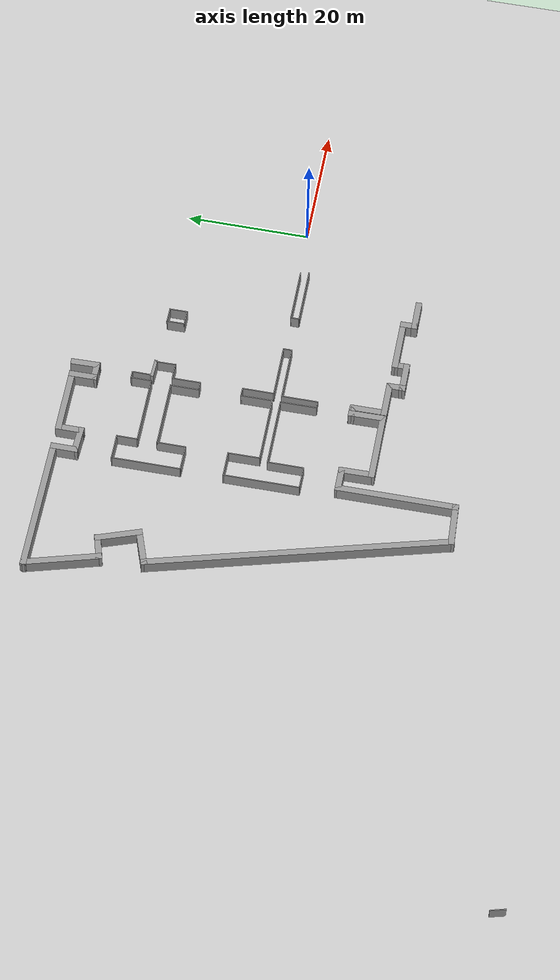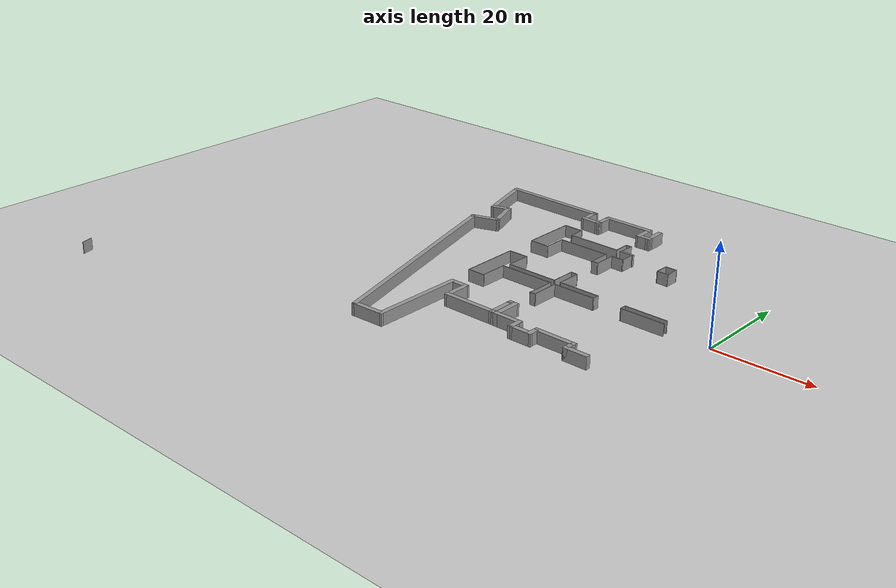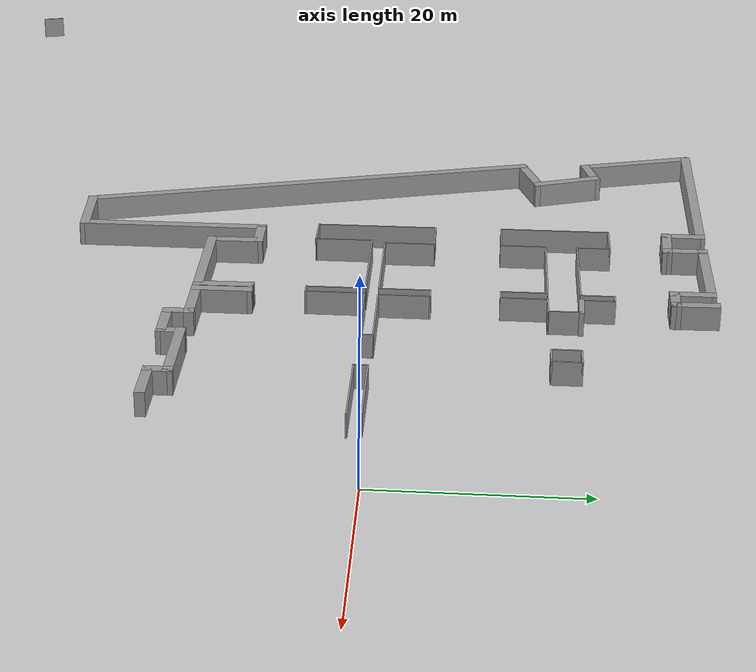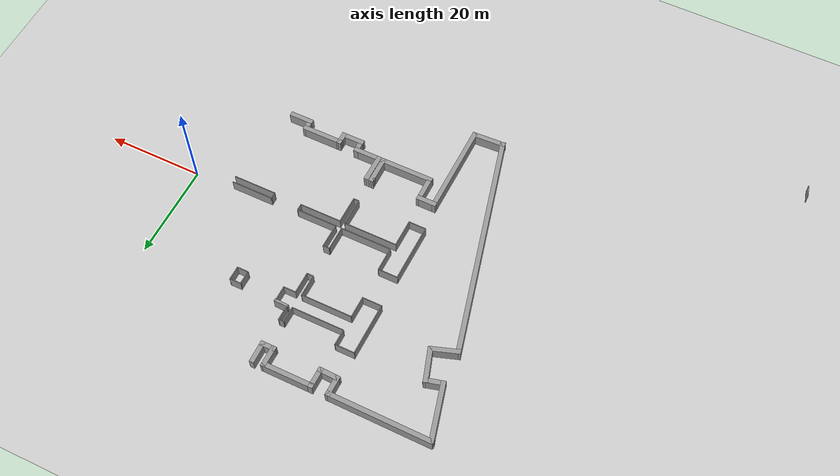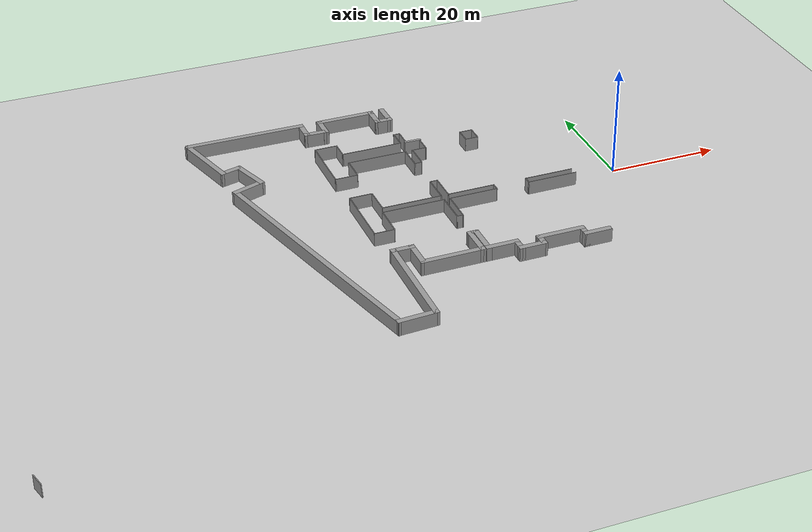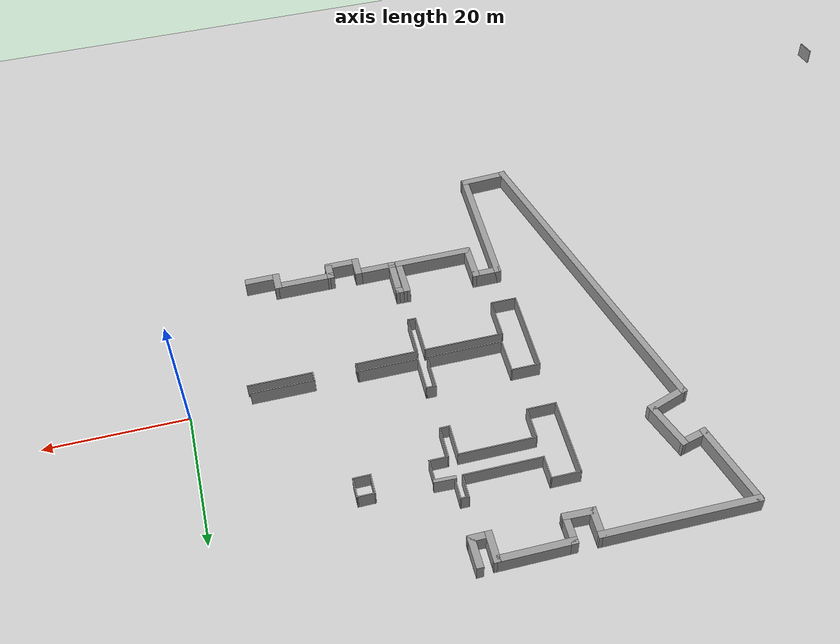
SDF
<sdf version="1.7">
 <world name="default">
  <model name="ground_plane">
   <static>1</static>
   <link name="link">
    <collision name="collision">
     <geometry><plane><normal>0 0 1</normal><size>100 100</size></plane></geometry>
     <surface><friction><ode><mu>100</mu><mu2>50</mu2></ode></friction></surface>
    </collision>
    <visual name="visual">
     <cast_shadows>0</cast_shadows>
     <geometry><plane><normal>0 0 1</normal><size>100 100</size></plane></geometry>
     <material>
      <script><uri>file://media/materials/scripts/gazebo.material</uri><name>Gazebo/Grey</name></script>
     </material>
    </visual>
   </link>
  </model>
  <model name="map7">
   <pose>-22.5342 -8.78038 0 0 -0 0</pose>
   <link name="Wall_0">
    <collision name="Wall_0_Collision">
     <geometry><box><size>22.3381 1 2.5</size></box></geometry>
     <pose>0 0 1.25 0 -0 0</pose>
    </collision>
    <visual name="Wall_0_Visual">
     <pose>0 0 1.25 0 -0 0</pose>
     <geometry><box><size>22.3381 1 2.5</size></box></geometry>
     <material>
      <script><uri>file://media/materials/scripts/gazebo.material</uri><name>Gazebo/Grey</name></script>
      <ambient>1 1 1 1</ambient>
     </material>
     <meta><layer>0</layer></meta>
    </visual>
    <pose>-36.4768 41.2489 0 0 -0 -0.006983</pose>
   </link>
   <link name="Wall_1">
    <collision name="Wall_1_Collision">
     <geometry><box><size>4.5 1 2.5</size></box></geometry>
     <pose>0 0 1.25 0 -0 0</pose>
    </collision>
    <visual name="Wall_1_Visual">
     <pose>0 0 1.25 0 -0 0</pose>
     <geometry><box><size>4.5 1 2.5</size></box></geometry>
     <material>
      <script><uri>file://media/materials/scripts/gazebo.material</uri><name>Gazebo/Grey</name></script>
      <ambient>1 1 1 1</ambient>
     </material>
     <meta><layer>0</layer></meta>
    </visual>
    <pose>-25.8078 39.4244 0 0 -0 -1.5708</pose>
   </link>
   <link name="Wall_101">
    <collision name="Wall_101_Collision">
     <geometry><box><size>12.25 0.15 2.5</size></box></geometry>
     <pose>0 0 1.25 0 -0 0</pose>
    </collision>
    <visual name="Wall_101_Visual">
     <pose>0 0 1.25 0 -0 0</pose>
     <geometry><box><size>12.25 0.15 2.5</size></box></geometry>
     <material>
      <script><uri>file://media/materials/scripts/gazebo.material</uri><name>Gazebo/Grey</name></script>
      <ambient>1 1 1 1</ambient>
     </material>
     <meta><layer>0</layer></meta>
    </visual>
    <pose>-26.0311 7.38819 0 0 -0 -1.5708</pose>
   </link>
   <link name="Wall_102">
    <collision name="Wall_102_Collision">
     <geometry><box><size>3.77517 0.15 2.5</size></box></geometry>
     <pose>0 0 1.25 0 -0 0</pose>
    </collision>
    <visual name="Wall_102_Visual">
     <pose>0 0 1.25 0 -0 0</pose>
     <geometry><box><size>3.77517 0.15 2.5</size></box></geometry>
     <material>
      <script><uri>file://media/materials/scripts/gazebo.material</uri><name>Gazebo/Grey</name></script>
      <ambient>1 1 1 1</ambient>
     </material>
     <meta><layer>0</layer></meta>
    </visual>
    <pose>-24.2186 1.29268 0 0 -0 -0.005925</pose>
   </link>
   <link name="Wall_103">
    <collision name="Wall_103_Collision">
     <geometry><box><size>6 0.15 2.5</size></box></geometry>
     <pose>0 0 1.25 0 -0 0</pose>
    </collision>
    <visual name="Wall_103_Visual">
     <pose>0 0 1.25 0 -0 0</pose>
     <geometry><box><size>6 0.15 2.5</size></box></geometry>
     <material>
      <script><uri>file://media/materials/scripts/gazebo.material</uri><name>Gazebo/Grey</name></script>
      <ambient>1 1 1 1</ambient>
     </material>
     <meta><layer>0</layer></meta>
    </visual>
    <pose>-22.406 4.20694 0 0 -0 1.5708</pose>
   </link>
   <link name="Wall_104">
    <collision name="Wall_104_Collision">
     <geometry><box><size>11.5 0.15 2.5</size></box></geometry>
     <pose>0 0 1.25 0 -0 0</pose>
    </collision>
    <visual name="Wall_104_Visual">
     <pose>0 0 1.25 0 -0 0</pose>
     <geometry><box><size>11.5 0.15 2.5</size></box></geometry>
     <material>
      <script><uri>file://media/materials/scripts/gazebo.material</uri><name>Gazebo/Grey</name></script>
      <ambient>1 1 1 1</ambient>
     </material>
     <meta><layer>0</layer></meta>
    </visual>
    <pose>-16.731 7.13194 0 0 -0 0</pose>
   </link>
   <link name="Wall_105">
    <collision name="Wall_105_Collision">
     <geometry><box><size>6 0.15 2.5</size></box></geometry>
     <pose>0 0 1.25 0 -0 0</pose>
    </collision>
    <visual name="Wall_105_Visual">
     <pose>0 0 1.25 0 -0 0</pose>
     <geometry><box><size>6 0.15 2.5</size></box></geometry>
     <material>
      <script><uri>file://media/materials/scripts/gazebo.material</uri><name>Gazebo/Grey</name></script>
      <ambient>1 1 1 1</ambient>
     </material>
     <meta><layer>0</layer></meta>
    </visual>
    <pose>-11.056 4.20694 0 0 -0 -1.5708</pose>
   </link>
   <link name="Wall_106">
    <collision name="Wall_106_Collision">
     <geometry><box><size>1.25 0.15 2.5</size></box></geometry>
     <pose>0 0 1.25 0 -0 0</pose>
    </collision>
    <visual name="Wall_106_Visual">
     <pose>0 0 1.25 0 -0 0</pose>
     <geometry><box><size>1.25 0.15 2.5</size></box></geometry>
     <material>
      <script><uri>file://media/materials/scripts/gazebo.material</uri><name>Gazebo/Grey</name></script>
      <ambient>1 1 1 1</ambient>
     </material>
     <meta><layer>0</layer></meta>
    </visual>
    <pose>-10.506 1.28194 0 0 -0 0</pose>
   </link>
   <link name="Wall_107">
    <collision name="Wall_107_Collision">
     <geometry><box><size>6 0.15 2.5</size></box></geometry>
     <pose>0 0 1.25 0 -0 0</pose>
    </collision>
    <visual name="Wall_107_Visual">
     <pose>0 0 1.25 0 -0 0</pose>
     <geometry><box><size>6 0.15 2.5</size></box></geometry>
     <material>
      <script><uri>file://media/materials/scripts/gazebo.material</uri><name>Gazebo/Grey</name></script>
      <ambient>1 1 1 1</ambient>
     </material>
     <meta><layer>0</layer></meta>
    </visual>
    <pose>-9.95603 4.20694 0 0 -0 1.5708</pose>
   </link>
   <link name="Wall_108">
    <collision name="Wall_108_Collision">
     <geometry><box><size>9 0.15 2.5</size></box></geometry>
     <pose>0 0 1.25 0 -0 0</pose>
    </collision>
    <visual name="Wall_108_Visual">
     <pose>0 0 1.25 0 -0 0</pose>
     <geometry><box><size>9 0.15 2.5</size></box></geometry>
     <material>
      <script><uri>file://media/materials/scripts/gazebo.material</uri><name>Gazebo/Grey</name></script>
      <ambient>1 1 1 1</ambient>
     </material>
     <meta><layer>0</layer></meta>
    </visual>
    <pose>-5.53103 7.13194 0 0 -0 0</pose>
   </link>
   <link name="Wall_109">
    <collision name="Wall_109_Collision">
     <geometry><box><size>1.5 0.15 2.5</size></box></geometry>
     <pose>0 0 1.25 0 -0 0</pose>
    </collision>
    <visual name="Wall_109_Visual">
     <pose>0 0 1.25 0 -0 0</pose>
     <geometry><box><size>1.5 0.15 2.5</size></box></geometry>
     <material>
      <script><uri>file://media/materials/scripts/gazebo.material</uri><name>Gazebo/Grey</name></script>
      <ambient>1 1 1 1</ambient>
     </material>
     <meta><layer>0</layer></meta>
    </visual>
    <pose>-1.10603 7.80694 0 0 -0 1.5708</pose>
   </link>
   <link name="Wall_110">
    <collision name="Wall_110_Collision">
     <geometry><box><size>8.75 0.15 2.5</size></box></geometry>
     <pose>0 0 1.25 0 -0 0</pose>
    </collision>
    <visual name="Wall_110_Visual">
     <pose>0 0 1.25 0 -0 0</pose>
     <geometry><box><size>8.75 0.15 2.5</size></box></geometry>
     <material>
      <script><uri>file://media/materials/scripts/gazebo.material</uri><name>Gazebo/Grey</name></script>
      <ambient>1 1 1 1</ambient>
     </material>
     <meta><layer>0</layer></meta>
    </visual>
    <pose>-5.40603 8.48194 0 0 -0 3.14159</pose>
   </link>
   <link name="Wall_111">
    <collision name="Wall_111_Collision">
     <geometry><box><size>5.25 0.15 2.5</size></box></geometry>
     <pose>0 0 1.25 0 -0 0</pose>
    </collision>
    <visual name="Wall_111_Visual">
     <pose>0 0 1.25 0 -0 0</pose>
     <geometry><box><size>5.25 0.15 2.5</size></box></geometry>
     <material>
      <script><uri>file://media/materials/scripts/gazebo.material</uri><name>Gazebo/Grey</name></script>
      <ambient>1 1 1 1</ambient>
     </material>
     <meta><layer>0</layer></meta>
    </visual>
    <pose>-9.70603 11.0319 0 0 -0 1.5708</pose>
   </link>
   <link name="Wall_112">
    <collision name="Wall_112_Collision">
     <geometry><box><size>1.5 0.15 2.5</size></box></geometry>
     <pose>0 0 1.25 0 -0 0</pose>
    </collision>
    <visual name="Wall_112_Visual">
     <pose>0 0 1.25 0 -0 0</pose>
     <geometry><box><size>1.5 0.15 2.5</size></box></geometry>
     <material>
      <script><uri>file://media/materials/scripts/gazebo.material</uri><name>Gazebo/Grey</name></script>
      <ambient>1 1 1 1</ambient>
     </material>
     <meta><layer>0</layer></meta>
    </visual>
    <pose>-10.381 13.5819 0 0 -0 3.14159</pose>
   </link>
   <link name="Wall_113">
    <collision name="Wall_113_Collision">
     <geometry><box><size>5.25 0.15 2.5</size></box></geometry>
     <pose>0 0 1.25 0 -0 0</pose>
    </collision>
    <visual name="Wall_113_Visual">
     <pose>0 0 1.25 0 -0 0</pose>
     <geometry><box><size>5.25 0.15 2.5</size></box></geometry>
     <material>
      <script><uri>file://media/materials/scripts/gazebo.material</uri><name>Gazebo/Grey</name></script>
      <ambient>1 1 1 1</ambient>
     </material>
     <meta><layer>0</layer></meta>
    </visual>
    <pose>-11.056 11.0319 0 0 -0 -1.5708</pose>
   </link>
   <link name="Wall_114">
    <collision name="Wall_114_Collision">
     <geometry><box><size>11 0.15 2.5</size></box></geometry>
     <pose>0 0 1.25 0 -0 0</pose>
    </collision>
    <visual name="Wall_114_Visual">
     <pose>0 0 1.25 0 -0 0</pose>
     <geometry><box><size>11 0.15 2.5</size></box></geometry>
     <material>
      <script><uri>file://media/materials/scripts/gazebo.material</uri><name>Gazebo/Grey</name></script>
      <ambient>1 1 1 1</ambient>
     </material>
     <meta><layer>0</layer></meta>
    </visual>
    <pose>-16.481 8.48194 0 0 -0 3.14159</pose>
   </link>
   <link name="Wall_115">
    <collision name="Wall_115_Collision">
     <geometry><box><size>5.26489 0.15 2.5</size></box></geometry>
     <pose>0 0 1.25 0 -0 0</pose>
    </collision>
    <visual name="Wall_115_Visual">
     <pose>0 0 1.25 0 -0 0</pose>
     <geometry><box><size>5.26489 0.15 2.5</size></box></geometry>
     <material>
      <script><uri>file://media/materials/scripts/gazebo.material</uri><name>Gazebo/Grey</name></script>
      <ambient>1 1 1 1</ambient>
     </material>
     <meta><layer>0</layer></meta>
    </visual>
    <pose>-21.9184 11.0394 0 0 -0 1.57563</pose>
   </link>
   <link name="Wall_116">
    <collision name="Wall_116_Collision">
     <geometry><box><size>4.25 0.15 2.5</size></box></geometry>
     <pose>0 0 1.25 0 -0 0</pose>
    </collision>
    <visual name="Wall_116_Visual">
     <pose>0 0 1.25 0 -0 0</pose>
     <geometry><box><size>4.25 0.15 2.5</size></box></geometry>
     <material>
      <script><uri>file://media/materials/scripts/gazebo.material</uri><name>Gazebo/Grey</name></script>
      <ambient>1 1 1 1</ambient>
     </material>
     <meta><layer>0</layer></meta>
    </visual>
    <pose>-23.9807 13.5918 0 0 -0 3.14159</pose>
   </link>
   <link name="Wall_118">
    <collision name="Wall_118_Collision">
     <geometry><box><size>9 0.15 2.5</size></box></geometry>
     <pose>0 0 1.25 0 -0 0</pose>
    </collision>
    <visual name="Wall_118_Visual">
     <pose>0 0 1.25 0 -0 0</pose>
     <geometry><box><size>9 0.15 2.5</size></box></geometry>
     <material>
      <script><uri>file://media/materials/scripts/gazebo.material</uri><name>Gazebo/Grey</name></script>
      <ambient>1 1 1 1</ambient>
     </material>
     <meta><layer>0</layer></meta>
    </visual>
    <pose>9.40506 8.40745 0 0 -0 0</pose>
   </link>
   <link name="Wall_128">
    <collision name="Wall_128_Collision">
     <geometry><box><size>9.25 0.15 2.5</size></box></geometry>
     <pose>0 0 1.25 0 -0 0</pose>
    </collision>
    <visual name="Wall_128_Visual">
     <pose>0 0 1.25 0 -0 0</pose>
     <geometry><box><size>9.25 0.15 2.5</size></box></geometry>
     <material>
      <script><uri>file://media/materials/scripts/gazebo.material</uri><name>Gazebo/Grey</name></script>
      <ambient>1 1 1 1</ambient>
     </material>
     <meta><layer>0</layer></meta>
    </visual>
    <pose>9.53006 7.05745 0 0 -0 3.14159</pose>
   </link>
   <link name="Wall_129">
    <collision name="Wall_129_Collision">
     <geometry><box><size>1.5 0.15 2.5</size></box></geometry>
     <pose>0 0 1.25 0 -0 0</pose>
    </collision>
    <visual name="Wall_129_Visual">
     <pose>0 0 1.25 0 -0 0</pose>
     <geometry><box><size>1.5 0.15 2.5</size></box></geometry>
     <material>
      <script><uri>file://media/materials/scripts/gazebo.material</uri><name>Gazebo/Grey</name></script>
      <ambient>1 1 1 1</ambient>
     </material>
     <meta><layer>0</layer></meta>
    </visual>
    <pose>4.98006 7.73245 0 0 -0 1.5708</pose>
   </link>
   <link name="Wall_140">
    <collision name="Wall_140_Collision">
     <geometry><box><size>3 0.15 2.5</size></box></geometry>
     <pose>0 0 1.25 0 -0 0</pose>
    </collision>
    <visual name="Wall_140_Visual">
     <pose>0 0 1.25 0 -0 0</pose>
     <geometry><box><size>3 0.15 2.5</size></box></geometry>
     <material>
      <script><uri>file://media/materials/scripts/gazebo.material</uri><name>Gazebo/Grey</name></script>
      <ambient>1 1 1 1</ambient>
     </material>
     <meta><layer>0</layer></meta>
    </visual>
    <pose>0.597433 26.6458 0 0 -0 -1.5708</pose>
   </link>
   <link name="Wall_141">
    <collision name="Wall_141_Collision">
     <geometry><box><size>2.5 0.15 2.5</size></box></geometry>
     <pose>0 0 1.25 0 -0 0</pose>
    </collision>
    <visual name="Wall_141_Visual">
     <pose>0 0 1.25 0 -0 0</pose>
     <geometry><box><size>2.5 0.15 2.5</size></box></geometry>
     <material>
      <script><uri>file://media/materials/scripts/gazebo.material</uri><name>Gazebo/Grey</name></script>
      <ambient>1 1 1 1</ambient>
     </material>
     <meta><layer>0</layer></meta>
    </visual>
    <pose>1.77243 25.2208 0 0 -0 0</pose>
   </link>
   <link name="Wall_142">
    <collision name="Wall_142_Collision">
     <geometry><box><size>3 0.15 2.5</size></box></geometry>
     <pose>0 0 1.25 0 -0 0</pose>
    </collision>
    <visual name="Wall_142_Visual">
     <pose>0 0 1.25 0 -0 0</pose>
     <geometry><box><size>3 0.15 2.5</size></box></geometry>
     <material>
      <script><uri>file://media/materials/scripts/gazebo.material</uri><name>Gazebo/Grey</name></script>
      <ambient>1 1 1 1</ambient>
     </material>
     <meta><layer>0</layer></meta>
    </visual>
    <pose>2.94743 26.6458 0 0 -0 1.5708</pose>
   </link>
   <link name="Wall_143">
    <collision name="Wall_143_Collision">
     <geometry><box><size>2.5 0.15 2.5</size></box></geometry>
     <pose>0 0 1.25 0 -0 0</pose>
    </collision>
    <visual name="Wall_143_Visual">
     <pose>0 0 1.25 0 -0 0</pose>
     <geometry><box><size>2.5 0.15 2.5</size></box></geometry>
     <material>
      <script><uri>file://media/materials/scripts/gazebo.material</uri><name>Gazebo/Grey</name></script>
      <ambient>1 1 1 1</ambient>
     </material>
     <meta><layer>0</layer></meta>
    </visual>
    <pose>1.77243 28.0708 0 0 -0 3.14159</pose>
   </link>
   <link name="Wall_2">
    <collision name="Wall_2_Collision">
     <geometry><box><size>4.64058 1 2.5</size></box></geometry>
     <pose>0 0 1.25 0 -0 0</pose>
    </collision>
    <visual name="Wall_2_Visual">
     <pose>0 0 1.25 0 -0 0</pose>
     <geometry><box><size>4.64058 1 2.5</size></box></geometry>
     <material>
      <script><uri>file://media/materials/scripts/gazebo.material</uri><name>Gazebo/Grey</name></script>
      <ambient>1 1 1 1</ambient>
     </material>
     <meta><layer>0</layer></meta>
    </visual>
    <pose>-23.9888 37.6049 0 0 -0 -0.038189</pose>
   </link>
   <link name="Wall_3">
    <collision name="Wall_3_Collision">
     <geometry><box><size>4.60041 1 2.5</size></box></geometry>
     <pose>0 0 1.25 0 -0 0</pose>
    </collision>
    <visual name="Wall_3_Visual">
     <pose>0 0 1.25 0 -0 0</pose>
     <geometry><box><size>4.60041 1 2.5</size></box></geometry>
     <material>
      <script><uri>file://media/materials/scripts/gazebo.material</uri><name>Gazebo/Grey</name></script>
      <ambient>1 1 1 1</ambient>
     </material>
     <meta><layer>0</layer></meta>
    </visual>
    <pose>-22.1698 39.3354 0 0 -0 1.5708</pose>
   </link>
   <link name="Wall_4">
    <collision name="Wall_4_Collision">
     <geometry><box><size>11.0999 1 2.5</size></box></geometry>
     <pose>0 0 1.25 0 -0 0</pose>
    </collision>
    <visual name="Wall_4_Visual">
     <pose>0 0 1.25 0 -0 0</pose>
     <geometry><box><size>11.0999 1 2.5</size></box></geometry>
     <material>
      <script><uri>file://media/materials/scripts/gazebo.material</uri><name>Gazebo/Grey</name></script>
      <ambient>1 1 1 1</ambient>
     </material>
     <meta><layer>0</layer></meta>
    </visual>
    <pose>-17.1198 41.1354 0 0 -0 0</pose>
   </link>
   <link name="Wall_5">
    <collision name="Wall_5_Collision">
     <geometry><box><size>4.59959 1 2.5</size></box></geometry>
     <pose>0 0 1.25 0 -0 0</pose>
    </collision>
    <visual name="Wall_5_Visual">
     <pose>0 0 1.25 0 -0 0</pose>
     <geometry><box><size>4.59959 1 2.5</size></box></geometry>
     <material>
      <script><uri>file://media/materials/scripts/gazebo.material</uri><name>Gazebo/Grey</name></script>
      <ambient>1 1 1 1</ambient>
     </material>
     <meta><layer>0</layer></meta>
    </visual>
    <pose>-12.0633 39.3354 0 0 -0 -1.56719</pose>
   </link>
   <link name="Wall_52">
    <collision name="Wall_52_Collision">
     <geometry><box><size>5.1 1 2.5</size></box></geometry>
     <pose>0 0 1.25 0 -0 0</pose>
    </collision>
    <visual name="Wall_52_Visual">
     <pose>0 0 1.25 0 -0 0</pose>
     <geometry><box><size>5.1 1 2.5</size></box></geometry>
     <material>
      <script><uri>file://media/materials/scripts/gazebo.material</uri><name>Gazebo/Grey</name></script>
      <ambient>1 1 1 1</ambient>
     </material>
     <meta><layer>0</layer></meta>
    </visual>
    <pose>9.15918 -11.6646 0 0 -0 3.14159</pose>
   </link>
   <link name="Wall_53">
    <collision name="Wall_53_Collision">
     <geometry><box><size>2.85 1 2.5</size></box></geometry>
     <pose>0 0 1.25 0 -0 0</pose>
    </collision>
    <visual name="Wall_53_Visual">
     <pose>0 0 1.25 0 -0 0</pose>
     <geometry><box><size>2.85 1 2.5</size></box></geometry>
     <material>
      <script><uri>file://media/materials/scripts/gazebo.material</uri><name>Gazebo/Grey</name></script>
      <ambient>1 1 1 1</ambient>
     </material>
     <meta><layer>0</layer></meta>
    </visual>
    <pose>7.10918 -10.7396 0 0 -0 1.5708</pose>
   </link>
   <link name="Wall_54">
    <collision name="Wall_54_Collision">
     <geometry><box><size>8.85001 1 2.5</size></box></geometry>
     <pose>0 0 1.25 0 -0 0</pose>
    </collision>
    <visual name="Wall_54_Visual">
     <pose>0 0 1.25 0 -0 0</pose>
     <geometry><box><size>8.85001 1 2.5</size></box></geometry>
     <material>
      <script><uri>file://media/materials/scripts/gazebo.material</uri><name>Gazebo/Grey</name></script>
      <ambient>1 1 1 1</ambient>
     </material>
     <meta><layer>0</layer></meta>
    </visual>
    <pose>3.18418 -9.80862 0 0 -0 3.14006</pose>
   </link>
   <link name="Wall_55">
    <collision name="Wall_55_Collision">
     <geometry><box><size>2.85063 1 2.5</size></box></geometry>
     <pose>0 0 1.25 0 -0 0</pose>
    </collision>
    <visual name="Wall_55_Visual">
     <pose>0 0 1.25 0 -0 0</pose>
     <geometry><box><size>2.85063 1 2.5</size></box></geometry>
     <material>
      <script><uri>file://media/materials/scripts/gazebo.material</uri><name>Gazebo/Grey</name></script>
      <ambient>1 1 1 1</ambient>
     </material>
     <meta><layer>0</layer></meta>
    </visual>
    <pose>-0.740824 -10.7281 0 0 -0 -1.5708</pose>
   </link>
   <link name="Wall_56">
    <collision name="Wall_56_Collision">
     <geometry><box><size>5.1 1 2.5</size></box></geometry>
     <pose>0 0 1.25 0 -0 0</pose>
    </collision>
    <visual name="Wall_56_Visual">
     <pose>0 0 1.25 0 -0 0</pose>
     <geometry><box><size>5.1 1 2.5</size></box></geometry>
     <material>
      <script><uri>file://media/materials/scripts/gazebo.material</uri><name>Gazebo/Grey</name></script>
      <ambient>1 1 1 1</ambient>
     </material>
     <meta><layer>0</layer></meta>
    </visual>
    <pose>-2.79082 -11.6591 0 0 -0 -3.13891</pose>
   </link>
   <link name="Wall_57">
    <collision name="Wall_57_Collision">
     <geometry><box><size>3.1 1 2.5</size></box></geometry>
     <pose>0 0 1.25 0 -0 0</pose>
    </collision>
    <visual name="Wall_57_Visual">
     <pose>0 0 1.25 0 -0 0</pose>
     <geometry><box><size>3.1 1 2.5</size></box></geometry>
     <material>
      <script><uri>file://media/materials/scripts/gazebo.material</uri><name>Gazebo/Grey</name></script>
      <ambient>1 1 1 1</ambient>
     </material>
     <meta><layer>0</layer></meta>
    </visual>
    <pose>-4.84082 -10.6146 0 0 -0 1.5708</pose>
   </link>
   <link name="Wall_58">
    <collision name="Wall_58_Collision">
     <geometry><box><size>6.1 1 2.5</size></box></geometry>
     <pose>0 0 1.25 0 -0 0</pose>
    </collision>
    <visual name="Wall_58_Visual">
     <pose>0 0 1.25 0 -0 0</pose>
     <geometry><box><size>6.1 1 2.5</size></box></geometry>
     <material>
      <script><uri>file://media/materials/scripts/gazebo.material</uri><name>Gazebo/Grey</name></script>
      <ambient>1 1 1 1</ambient>
     </material>
     <meta><layer>0</layer></meta>
    </visual>
    <pose>-7.39082 -9.56462 0 0 -0 3.14159</pose>
   </link>
   <link name="Wall_59">
    <collision name="Wall_59_Collision">
     <geometry><box><size>6.10043 1 2.5</size></box></geometry>
     <pose>0 0 1.25 0 -0 0</pose>
    </collision>
    <visual name="Wall_59_Visual">
     <pose>0 0 1.25 0 -0 0</pose>
     <geometry><box><size>6.10043 1 2.5</size></box></geometry>
     <material>
      <script><uri>file://media/materials/scripts/gazebo.material</uri><name>Gazebo/Grey</name></script>
      <ambient>1 1 1 1</ambient>
     </material>
     <meta><layer>0</layer></meta>
    </visual>
    <pose>-9.94082 -7.01462 0 0 -0 1.5708</pose>
   </link>
   <link name="Wall_6">
    <collision name="Wall_6_Collision">
     <geometry><box><size>3.34972 1 2.5</size></box></geometry>
     <pose>0 0 1.25 0 -0 0</pose>
    </collision>
    <visual name="Wall_6_Visual">
     <pose>0 0 1.25 0 -0 0</pose>
     <geometry><box><size>3.34972 1 2.5</size></box></geometry>
     <material>
      <script><uri>file://media/materials/scripts/gazebo.material</uri><name>Gazebo/Grey</name></script>
      <ambient>1 1 1 1</ambient>
     </material>
     <meta><layer>0</layer></meta>
    </visual>
    <pose>-10.8818 37.5354 0 0 -0 0</pose>
   </link>
   <link name="Wall_60">
    <collision name="Wall_60_Collision">
     <geometry><box><size>2.10024 1 2.5</size></box></geometry>
     <pose>0 0 1.25 0 -0 0</pose>
    </collision>
    <visual name="Wall_60_Visual">
     <pose>0 0 1.25 0 -0 0</pose>
     <geometry><box><size>2.10024 1 2.5</size></box></geometry>
     <material>
      <script><uri>file://media/materials/scripts/gazebo.material</uri><name>Gazebo/Grey</name></script>
      <ambient>1 1 1 1</ambient>
     </material>
     <meta><layer>0</layer></meta>
    </visual>
    <pose>-10.4908 -4.45312 0 0 -0 3.12069</pose>
   </link>
   <link name="Wall_61">
    <collision name="Wall_61_Collision">
     <geometry><box><size>6.10047 1 2.5</size></box></geometry>
     <pose>0 0 1.25 0 -0 0</pose>
    </collision>
    <visual name="Wall_61_Visual">
     <pose>0 0 1.25 0 -0 0</pose>
     <geometry><box><size>6.10047 1 2.5</size></box></geometry>
     <material>
      <script><uri>file://media/materials/scripts/gazebo.material</uri><name>Gazebo/Grey</name></script>
      <ambient>1 1 1 1</ambient>
     </material>
     <meta><layer>0</layer></meta>
    </visual>
    <pose>-11.0178 -6.99162 0 0 -0 -1.56178</pose>
   </link>
   <link name="Wall_62">
    <collision name="Wall_62_Collision">
     <geometry><box><size>11.6005 1 2.5</size></box></geometry>
     <pose>0 0 1.25 0 -0 0</pose>
    </collision>
    <visual name="Wall_62_Visual">
     <pose>0 0 1.25 0 -0 0</pose>
     <geometry><box><size>11.6005 1 2.5</size></box></geometry>
     <material>
      <script><uri>file://media/materials/scripts/gazebo.material</uri><name>Gazebo/Grey</name></script>
      <ambient>1 1 1 1</ambient>
     </material>
     <meta><layer>0</layer></meta>
    </visual>
    <pose>-16.2953 -9.55312 0 0 -0 -3.13942</pose>
   </link>
   <link name="Wall_63">
    <collision name="Wall_63_Collision">
     <geometry><box><size>5.85043 1 2.5</size></box></geometry>
     <pose>0 0 1.25 0 -0 0</pose>
    </collision>
    <visual name="Wall_63_Visual">
     <pose>0 0 1.25 0 -0 0</pose>
     <geometry><box><size>5.85043 1 2.5</size></box></geometry>
     <material>
      <script><uri>file://media/materials/scripts/gazebo.material</uri><name>Gazebo/Grey</name></script>
      <ambient>1 1 1 1</ambient>
     </material>
     <meta><layer>0</layer></meta>
    </visual>
    <pose>-21.6183 -7.13962 0 0 -0 1.58007</pose>
   </link>
   <link name="Wall_64">
    <collision name="Wall_64_Collision">
     <geometry><box><size>4.304 1 2.5</size></box></geometry>
     <pose>0 0 1.25 0 -0 0</pose>
    </collision>
    <visual name="Wall_64_Visual">
     <pose>0 0 1.25 0 -0 0</pose>
     <geometry><box><size>4.304 1 2.5</size></box></geometry>
     <material>
      <script><uri>file://media/materials/scripts/gazebo.material</uri><name>Gazebo/Grey</name></script>
      <ambient>1 1 1 1</ambient>
     </material>
     <meta><layer>0</layer></meta>
    </visual>
    <pose>-23.2928 -4.71462 0 0 -0 3.14159</pose>
   </link>
   <link name="Wall_65">
    <collision name="Wall_65_Collision">
     <geometry><box><size>19.85 1 2.5</size></box></geometry>
     <pose>0 0 1.25 0 -0 0</pose>
    </collision>
    <visual name="Wall_65_Visual">
     <pose>0 0 1.25 0 -0 0</pose>
     <geometry><box><size>19.85 1 2.5</size></box></geometry>
     <material>
      <script><uri>file://media/materials/scripts/gazebo.material</uri><name>Gazebo/Grey</name></script>
      <ambient>1 1 1 1</ambient>
     </material>
     <meta><layer>0</layer></meta>
    </visual>
    <pose>-24.9453 -14.1396 0 0 -0 -1.57085</pose>
   </link>
   <link name="Wall_7">
    <collision name="Wall_7_Collision">
     <geometry><box><size>4.77848 1 2.5</size></box></geometry>
     <pose>0 0 1.25 0 -0 0</pose>
    </collision>
    <visual name="Wall_7_Visual">
     <pose>0 0 1.25 0 -0 0</pose>
     <geometry><box><size>4.77848 1 2.5</size></box></geometry>
     <material>
      <script><uri>file://media/materials/scripts/gazebo.material</uri><name>Gazebo/Grey</name></script>
      <ambient>1 1 1 1</ambient>
     </material>
     <meta><layer>0</layer></meta>
    </visual>
    <pose>-9.73752 39.4244 0 0 -0 1.58704</pose>
   </link>
   <link name="Wall_72">
    <collision name="Wall_72_Collision">
     <geometry><box><size>2.5 0.15 2.5</size></box></geometry>
     <pose>0 0 1.25 0 -0 0</pose>
    </collision>
    <visual name="Wall_72_Visual">
     <pose>0 0 1.25 0 -0 0</pose>
     <geometry><box><size>2.5 0.15 2.5</size></box></geometry>
     <material>
      <script><uri>file://media/materials/scripts/gazebo.material</uri><name>Gazebo/Grey</name></script>
      <ambient>1 1 1 1</ambient>
     </material>
     <meta><layer>0</layer></meta>
    </visual>
    <pose>-91.3246 -40.6156 0 0 -0 1.8326</pose>
   </link>
   <link name="Wall_74">
    <collision name="Wall_74_Collision">
     <geometry><box><size>12.6312 1 2.5</size></box></geometry>
     <pose>0 0 1.25 0 -0 0</pose>
    </collision>
    <visual name="Wall_74_Visual">
     <pose>0 0 1.25 0 -0 0</pose>
     <geometry><box><size>12.6312 1 2.5</size></box></geometry>
     <material>
      <script><uri>file://media/materials/scripts/gazebo.material</uri><name>Gazebo/Grey</name></script>
      <ambient>1 1 1 1</ambient>
     </material>
     <meta><layer>0</layer></meta>
    </visual>
    <pose>-45.6046 35.5369 0 0 -0 -1.29927</pose>
   </link>
   <link name="Wall_75">
    <collision name="Wall_75_Collision">
     <geometry><box><size>4.35013 1 2.5</size></box></geometry>
     <pose>0 0 1.25 0 -0 0</pose>
    </collision>
    <visual name="Wall_75_Visual">
     <pose>0 0 1.25 0 -0 0</pose>
     <geometry><box><size>4.35013 1 2.5</size></box></geometry>
     <material>
      <script><uri>file://media/materials/scripts/gazebo.material</uri><name>Gazebo/Grey</name></script>
      <ambient>1 1 1 1</ambient>
     </material>
     <meta><layer>0</layer></meta>
    </visual>
    <pose>-42.4268 30.3679 0 0 -0 0.261775</pose>
   </link>
   <link name="Wall_76">
    <collision name="Wall_76_Collision">
     <geometry><box><size>7.60184 1 2.5</size></box></geometry>
     <pose>0 0 1.25 0 -0 0</pose>
    </collision>
    <visual name="Wall_76_Visual">
     <pose>0 0 1.25 0 -0 0</pose>
     <geometry><box><size>7.60184 1 2.5</size></box></geometry>
     <material>
      <script><uri>file://media/materials/scripts/gazebo.material</uri><name>Gazebo/Grey</name></script>
      <ambient>1 1 1 1</ambient>
     </material>
     <meta><layer>0</layer></meta>
    </visual>
    <pose>-39.7368 27.6794 0 0 -0 -1.24004</pose>
   </link>
   <link name="Wall_77">
    <collision name="Wall_77_Collision">
     <geometry><box><size>6.34717 1 2.5</size></box></geometry>
     <pose>0 0 1.25 0 -0 0</pose>
    </collision>
    <visual name="Wall_77_Visual">
     <pose>0 0 1.25 0 -0 0</pose>
     <geometry><box><size>6.34717 1 2.5</size></box></geometry>
     <material>
      <script><uri>file://media/materials/scripts/gazebo.material</uri><name>Gazebo/Grey</name></script>
      <ambient>1 1 1 1</ambient>
     </material>
     <meta><layer>0</layer></meta>
    </visual>
    <pose>-41.1928 23.6874 0 0 -0 -2.81014</pose>
   </link>
   <link name="Wall_78">
    <collision name="Wall_78_Collision">
     <geometry><box><size>49.3495 1 2.5</size></box></geometry>
     <pose>0 0 1.25 0 -0 0</pose>
    </collision>
    <visual name="Wall_78_Visual">
     <pose>0 0 1.25 0 -0 0</pose>
     <geometry><box><size>49.3495 1 2.5</size></box></geometry>
     <material>
      <script><uri>file://media/materials/scripts/gazebo.material</uri><name>Gazebo/Grey</name></script>
      <ambient>1 1 1 1</ambient>
     </material>
     <meta><layer>0</layer></meta>
    </visual>
    <pose>-37.464 -0.533381 0 0 -0 -1.309</pose>
   </link>
   <link name="Wall_81">
    <collision name="Wall_81_Collision">
     <geometry><box><size>7.26946 1 2.5</size></box></geometry>
     <pose>0 0 1.25 0 -0 0</pose>
    </collision>
    <visual name="Wall_81_Visual">
     <pose>0 0 1.25 0 -0 0</pose>
     <geometry><box><size>7.26946 1 2.5</size></box></geometry>
     <material>
      <script><uri>file://media/materials/scripts/gazebo.material</uri><name>Gazebo/Grey</name></script>
      <ambient>1 1 1 1</ambient>
     </material>
     <meta><layer>0</layer></meta>
    </visual>
    <pose>-28.0765 -23.7244 0 0 -0 0.050986</pose>
   </link>
   <link name="Wall_83">
    <collision name="Wall_83_Collision">
     <geometry><box><size>11.3232 0.15 2.5</size></box></geometry>
     <pose>0 0 1.25 0 -0 0</pose>
    </collision>
    <visual name="Wall_83_Visual">
     <pose>0 0 1.25 0 -0 0</pose>
     <geometry><box><size>11.3232 0.15 2.5</size></box></geometry>
     <material>
      <script><uri>file://media/materials/scripts/gazebo.material</uri><name>Gazebo/Grey</name></script>
      <ambient>1 1 1 1</ambient>
     </material>
     <meta><layer>0</layer></meta>
    </visual>
    <pose>-26.2083 26.082 0 0 -0 -1.57095</pose>
   </link>
   <link name="Wall_84">
    <collision name="Wall_84_Collision">
     <geometry><box><size>4.25 0.15 2.5</size></box></geometry>
     <pose>0 0 1.25 0 -0 0</pose>
    </collision>
    <visual name="Wall_84_Visual">
     <pose>0 0 1.25 0 -0 0</pose>
     <geometry><box><size>4.25 0.15 2.5</size></box></geometry>
     <material>
      <script><uri>file://media/materials/scripts/gazebo.material</uri><name>Gazebo/Grey</name></script>
      <ambient>1 1 1 1</ambient>
     </material>
     <meta><layer>0</layer></meta>
    </visual>
    <pose>-24.1592 20.4954 0 0 -0 0</pose>
   </link>
   <link name="Wall_85">
    <collision name="Wall_85_Collision">
     <geometry><box><size>4.75 0.15 2.5</size></box></geometry>
     <pose>0 0 1.25 0 -0 0</pose>
    </collision>
    <visual name="Wall_85_Visual">
     <pose>0 0 1.25 0 -0 0</pose>
     <geometry><box><size>4.75 0.15 2.5</size></box></geometry>
     <material>
      <script><uri>file://media/materials/scripts/gazebo.material</uri><name>Gazebo/Grey</name></script>
      <ambient>1 1 1 1</ambient>
     </material>
     <meta><layer>0</layer></meta>
    </visual>
    <pose>-22.1092 22.7954 0 0 -0 1.5708</pose>
   </link>
   <link name="Wall_86">
    <collision name="Wall_86_Collision">
     <geometry><box><size>11 0.15 2.5</size></box></geometry>
     <pose>0 0 1.25 0 -0 0</pose>
    </collision>
    <visual name="Wall_86_Visual">
     <pose>0 0 1.25 0 -0 0</pose>
     <geometry><box><size>11 0.15 2.5</size></box></geometry>
     <material>
      <script><uri>file://media/materials/scripts/gazebo.material</uri><name>Gazebo/Grey</name></script>
      <ambient>1 1 1 1</ambient>
     </material>
     <meta><layer>0</layer></meta>
    </visual>
    <pose>-16.6842 25.0954 0 0 -0 0</pose>
   </link>
   <link name="Wall_87">
    <collision name="Wall_87_Collision">
     <geometry><box><size>4.75 0.15 2.5</size></box></geometry>
     <pose>0 0 1.25 0 -0 0</pose>
    </collision>
    <visual name="Wall_87_Visual">
     <pose>0 0 1.25 0 -0 0</pose>
     <geometry><box><size>4.75 0.15 2.5</size></box></geometry>
     <material>
      <script><uri>file://media/materials/scripts/gazebo.material</uri><name>Gazebo/Grey</name></script>
      <ambient>1 1 1 1</ambient>
     </material>
     <meta><layer>0</layer></meta>
    </visual>
    <pose>-11.2592 22.7954 0 0 -0 -1.5708</pose>
   </link>
   <link name="Wall_88">
    <collision name="Wall_88_Collision">
     <geometry><box><size>1.5 0.15 2.5</size></box></geometry>
     <pose>0 0 1.25 0 -0 0</pose>
    </collision>
    <visual name="Wall_88_Visual">
     <pose>0 0 1.25 0 -0 0</pose>
     <geometry><box><size>1.5 0.15 2.5</size></box></geometry>
     <material>
      <script><uri>file://media/materials/scripts/gazebo.material</uri><name>Gazebo/Grey</name></script>
      <ambient>1 1 1 1</ambient>
     </material>
     <meta><layer>0</layer></meta>
    </visual>
    <pose>-10.5842 20.4954 0 0 -0 0</pose>
   </link>
   <link name="Wall_89">
    <collision name="Wall_89_Collision">
     <geometry><box><size>4.75 0.15 2.5</size></box></geometry>
     <pose>0 0 1.25 0 -0 0</pose>
    </collision>
    <visual name="Wall_89_Visual">
     <pose>0 0 1.25 0 -0 0</pose>
     <geometry><box><size>4.75 0.15 2.5</size></box></geometry>
     <material>
      <script><uri>file://media/materials/scripts/gazebo.material</uri><name>Gazebo/Grey</name></script>
      <ambient>1 1 1 1</ambient>
     </material>
     <meta><layer>0</layer></meta>
    </visual>
    <pose>-9.90917 22.7954 0 0 -0 1.5708</pose>
   </link>
   <link name="Wall_90">
    <collision name="Wall_90_Collision">
     <geometry><box><size>2.75 0.15 2.5</size></box></geometry>
     <pose>0 0 1.25 0 -0 0</pose>
    </collision>
    <visual name="Wall_90_Visual">
     <pose>0 0 1.25 0 -0 0</pose>
     <geometry><box><size>2.75 0.15 2.5</size></box></geometry>
     <material>
      <script><uri>file://media/materials/scripts/gazebo.material</uri><name>Gazebo/Grey</name></script>
      <ambient>1 1 1 1</ambient>
     </material>
     <meta><layer>0</layer></meta>
    </visual>
    <pose>-8.60917 25.0954 0 0 -0 0</pose>
   </link>
   <link name="Wall_91">
    <collision name="Wall_91_Collision">
     <geometry><box><size>3.3529 0.15 2.5</size></box></geometry>
     <pose>0 0 1.25 0 -0 0</pose>
    </collision>
    <visual name="Wall_91_Visual">
     <pose>0 0 1.25 0 -0 0</pose>
     <geometry><box><size>3.3529 0.15 2.5</size></box></geometry>
     <material>
      <script><uri>file://media/materials/scripts/gazebo.material</uri><name>Gazebo/Grey</name></script>
      <ambient>1 1 1 1</ambient>
     </material>
     <meta><layer>0</layer></meta>
    </visual>
    <pose>-7.32043 26.6968 0 0 -0 1.57783</pose>
   </link>
   <link name="Wall_92">
    <collision name="Wall_92_Collision">
     <geometry><box><size>3.09076 0.5 2.5</size></box></geometry>
     <pose>0 0 1.25 0 -0 0</pose>
    </collision>
    <visual name="Wall_92_Visual">
     <pose>0 0 1.25 0 -0 0</pose>
     <geometry><box><size>3.09076 0.5 2.5</size></box></geometry>
     <material>
      <script><uri>file://media/materials/scripts/gazebo.material</uri><name>Gazebo/Grey</name></script>
      <ambient>1 1 1 1</ambient>
     </material>
     <meta><layer>0</layer></meta>
    </visual>
    <pose>-8.61478 28.3454 0 0 -0 3.10521</pose>
   </link>
   <link name="Wall_93">
    <collision name="Wall_93_Collision">
     <geometry><box><size>3.39713 0.15 2.5</size></box></geometry>
     <pose>0 0 1.25 0 -0 0</pose>
    </collision>
    <visual name="Wall_93_Visual">
     <pose>0 0 1.25 0 -0 0</pose>
     <geometry><box><size>3.39713 0.15 2.5</size></box></geometry>
     <material>
      <script><uri>file://media/materials/scripts/gazebo.material</uri><name>Gazebo/Grey</name></script>
      <ambient>1 1 1 1</ambient>
     </material>
     <meta><layer>0</layer></meta>
    </visual>
    <pose>-9.9093 30.016 0 0 -0 1.56376</pose>
   </link>
   <link name="Wall_95">
    <collision name="Wall_95_Collision">
     <geometry><box><size>1.25 0.15 2.5</size></box></geometry>
     <pose>0 0 1.25 0 -0 0</pose>
    </collision>
    <visual name="Wall_95_Visual">
     <pose>0 0 1.25 0 -0 0</pose>
     <geometry><box><size>1.25 0.15 2.5</size></box></geometry>
     <material>
      <script><uri>file://media/materials/scripts/gazebo.material</uri><name>Gazebo/Grey</name></script>
      <ambient>1 1 1 1</ambient>
     </material>
     <meta><layer>0</layer></meta>
    </visual>
    <pose>-10.4575 31.6384 0 0 -0 3.14159</pose>
   </link>
   <link name="Wall_96">
    <collision name="Wall_96_Collision">
     <geometry><box><size>3.46982 0.15 2.5</size></box></geometry>
     <pose>0 0 1.25 0 -0 0</pose>
    </collision>
    <visual name="Wall_96_Visual">
     <pose>0 0 1.25 0 -0 0</pose>
     <geometry><box><size>3.46982 0.15 2.5</size></box></geometry>
     <material>
      <script><uri>file://media/materials/scripts/gazebo.material</uri><name>Gazebo/Grey</name></script>
      <ambient>1 1 1 1</ambient>
     </material>
     <meta><layer>0</layer></meta>
    </visual>
    <pose>-11.0024 29.9785 0 0 -0 -1.57383</pose>
   </link>
   <link name="Wall_97">
    <collision name="Wall_97_Collision">
     <geometry><box><size>11.25 0.15 2.5</size></box></geometry>
     <pose>0 0 1.25 0 -0 0</pose>
    </collision>
    <visual name="Wall_97_Visual">
     <pose>0 0 1.25 0 -0 0</pose>
     <geometry><box><size>11.25 0.15 2.5</size></box></geometry>
     <material>
      <script><uri>file://media/materials/scripts/gazebo.material</uri><name>Gazebo/Grey</name></script>
      <ambient>1 1 1 1</ambient>
     </material>
     <meta><layer>0</layer></meta>
    </visual>
    <pose>-16.5575 28.3186 0 0 -0 3.14159</pose>
   </link>
   <link name="Wall_98">
    <collision name="Wall_98_Collision">
     <geometry><box><size>3.5 0.15 2.5</size></box></geometry>
     <pose>0 0 1.25 0 -0 0</pose>
    </collision>
    <visual name="Wall_98_Visual">
     <pose>0 0 1.25 0 -0 0</pose>
     <geometry><box><size>3.5 0.15 2.5</size></box></geometry>
     <material>
      <script><uri>file://media/materials/scripts/gazebo.material</uri><name>Gazebo/Grey</name></script>
      <ambient>1 1 1 1</ambient>
     </material>
     <meta><layer>0</layer></meta>
    </visual>
    <pose>-22.1075 29.9936 0 0 -0 1.5708</pose>
   </link>
   <link name="Wall_99">
    <collision name="Wall_99_Collision">
     <geometry><box><size>4.25 0.15 2.5</size></box></geometry>
     <pose>0 0 1.25 0 -0 0</pose>
    </collision>
    <visual name="Wall_99_Visual">
     <pose>0 0 1.25 0 -0 0</pose>
     <geometry><box><size>4.25 0.15 2.5</size></box></geometry>
     <material>
      <script><uri>file://media/materials/scripts/gazebo.material</uri><name>Gazebo/Grey</name></script>
      <ambient>1 1 1 1</ambient>
     </material>
     <meta><layer>0</layer></meta>
    </visual>
    <pose>-24.1575 31.6686 0 0 -0 3.14159</pose>
   </link>
   <static>1</static>
  </model>
 </world>
</sdf>
